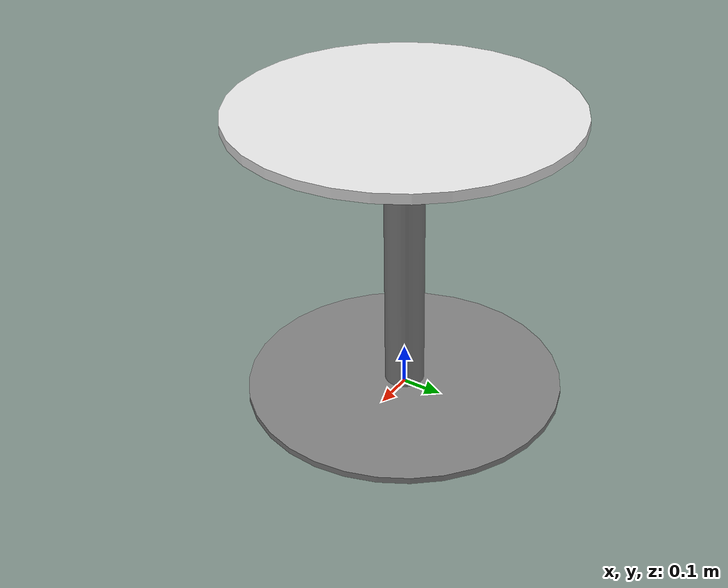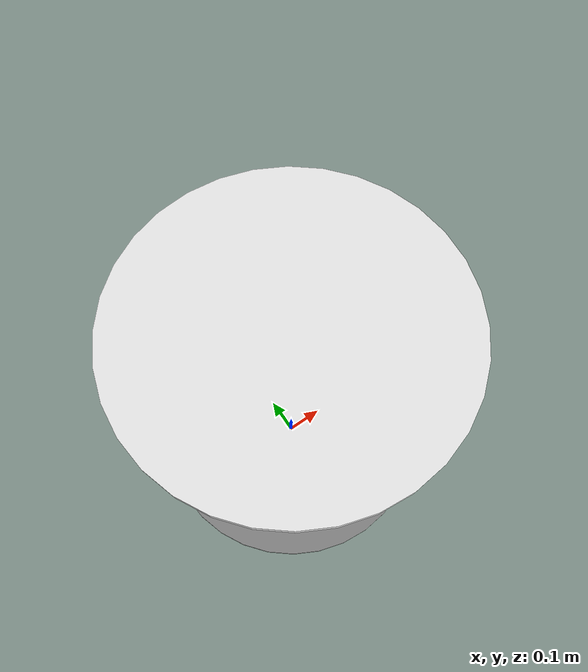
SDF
<?xml version="1.0" ?>
<sdf version="1.6">
  <model name="round_table">
    <static>true</static>
    <link name="link">
      <collision name="top_collision">
        <geometry>
          <mesh>
            <uri>model://round_table/meshes/round_table_top.dae</uri>
          </mesh>
        </geometry>
      </collision>
      <visual name="top__visual">
        <material>
          <ambient>0.8 0.8 0.8 1.0</ambient>
          <diffuse>0.9 0.9 0.9 1.0</diffuse>
          <specular>0.3 0.3 0.3 8</specular>
          <emissive>0 0 0 1</emissive>
        </material>
        <geometry>
          <mesh>
            <uri>model://round_table/meshes/round_table_top.dae</uri>
          </mesh>
        </geometry>
      </visual>
      <collision name="base_collision">
        <geometry>
          <mesh>
            <uri>model://round_table//meshes/round_table_base.dae</uri>
          </mesh>
        </geometry>
      </collision>
      <visual name="base_visual">
        <material>
          <ambient>0.5 0.5 0.5 1.0</ambient>
          <diffuse>0.5 0.5 0.5 1.0</diffuse>
          <specular>0.5 0.5 0.5 64</specular>
          <emissive>0 0 0 1</emissive>
        </material>
        <geometry>
          <mesh>
            <uri>model://round_table/meshes/round_table_base.dae</uri>
          </mesh>
        </geometry>
      </visual>
    </link>
  </model>
</sdf>
